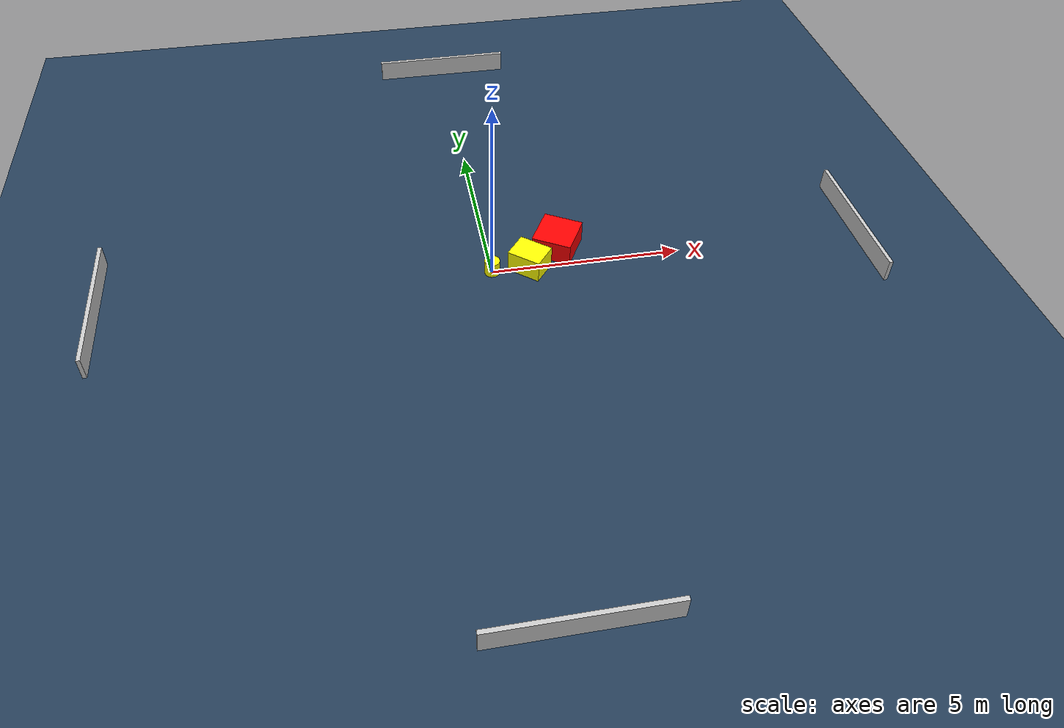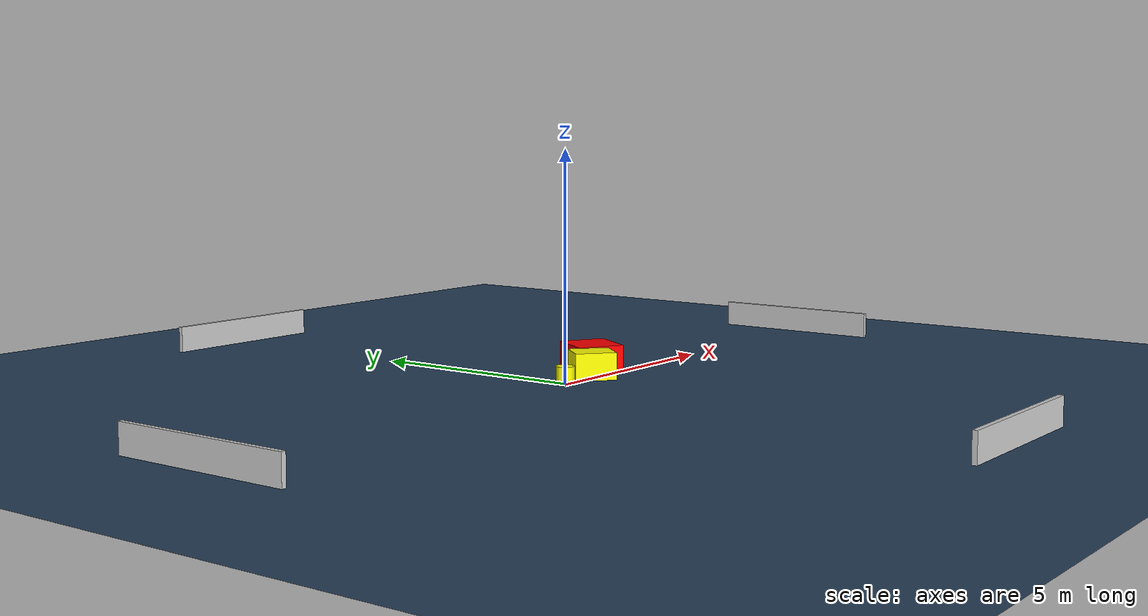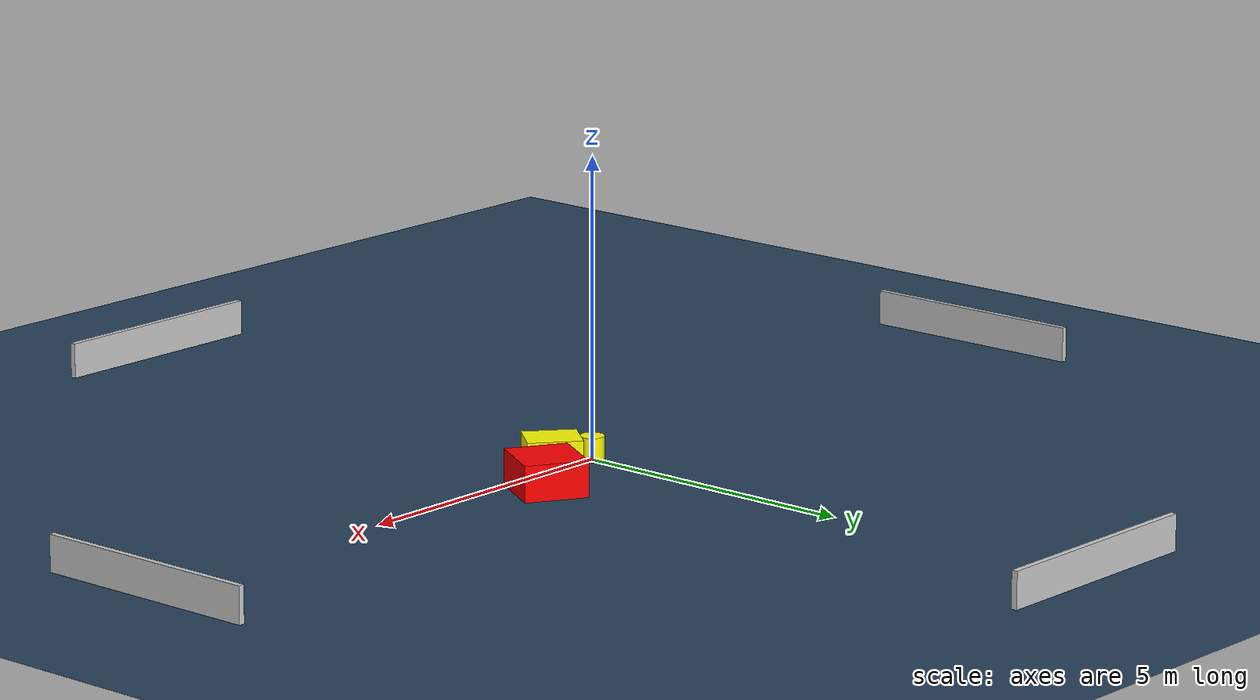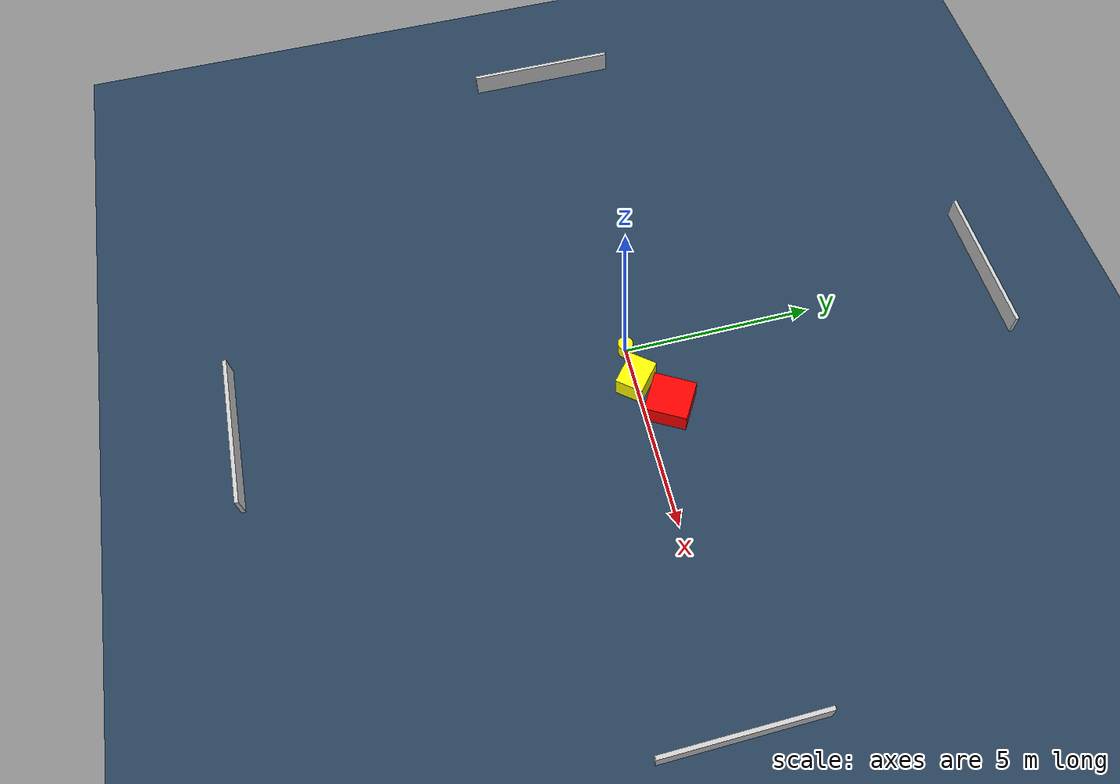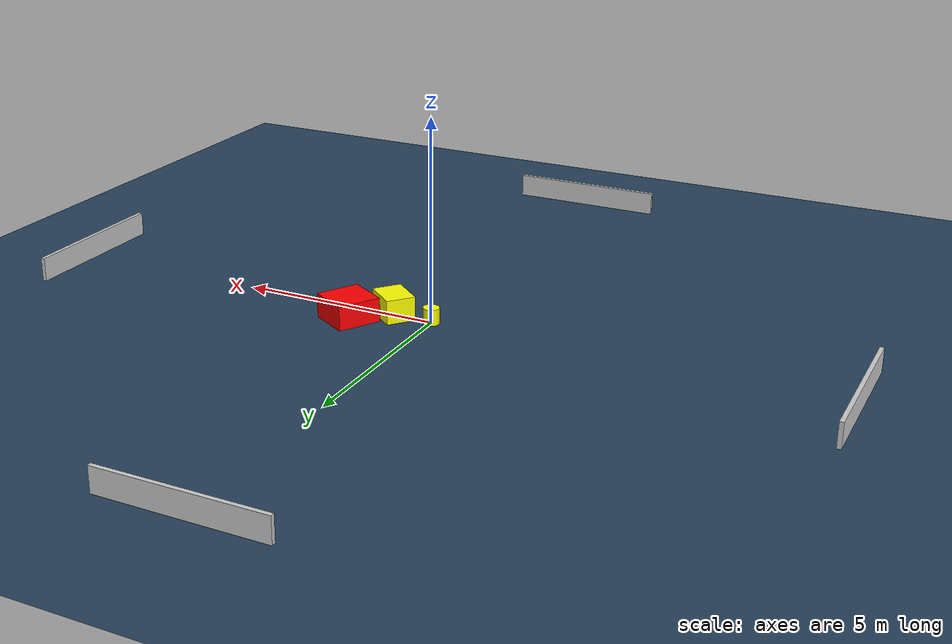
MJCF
<?xml version="1.0" ?>
<mujoco model="generated_environment">
  <option timestep="0.01" integrator="RK4" cone="elliptic"/>
  <default>
    <geom density="1"/>
  </default>
  <asset>
    <texture builtin="gradient" height="3072" name="skybox" rgb1="0.3 0.5 0.7" rgb2="0 0 0" type="skybox" width="512"/>
    <texture builtin="checker" height="300" name="groundplane" rgb1="0.2 0.3 0.4" rgb2="0.1 0.2 0.3" type="2d" width="300"/>
    <material name="groundplane" reflectance="0.2" texrepeat="5 5" texture="groundplane"/>
  </asset>
  <worldbody>
    <light dir="0 0 -1" directional="true" pos="0 0 1.5"/>
    <geom condim="3" friction="0.5 0.005 0.001" material="groundplane" name="floor" pos="0 0 0" size="0 0 0.05" type="plane"/>
    <body name="walls">
      <geom name="wall_1" condim="4" pos="-10.0 0.0 0.3" rgba="0.800000011920929 0.800000011920929 0.800000011920929 1.0" size="0.05 2.0 0.3" type="box"/>
      <geom name="wall_2" condim="4" pos="10.0 0.0 0.3" rgba="0.800000011920929 0.800000011920929 0.800000011920929 1.0" size="0.05 2.0 0.3" type="box"/>
      <geom name="wall_3" condim="4" pos="0.0 -10.0 0.3" rgba="0.800000011920929 0.800000011920929 0.800000011920929 1.0" size="2.0 0.05 0.3" type="box"/>
      <geom name="wall_4" condim="4" pos="0.0 10.0 0.3" rgba="0.800000011920929 0.800000011920929 0.800000011920929 1.0" size="2.0 0.05 0.3" type="box"/>
    </body>
    <body name="robot">
      <joint name="joint_x" type="slide" pos="0 0 0" axis="1 0 0"/>
      <joint name="joint_y" type="slide" pos="0 0 0" axis="0 1 0"/>
      <geom name="robot" type="cylinder" pos="0.0 0.0 0.2" size="0.2 0.2 0.0" mass="5.0" friction="1.0 0.005 0.0001" condim="4" rgba="1.0 1.0 0.0 1.0"/>
    </body>
    <body name="obstacle_1_movable">
      <geom name="obstacle_1_movable" condim="4" pos="0.994546345722216 0.017611027710311727 0.3" euler="0 0 230.3921029800677" friction="0.0 0.005 0.001" rgba="1.0 1.0 0.0 1.0" size="0.3635937169763382 0.45337855071469235 0.3" type="box" mass="0.1"/>
      <joint type="free"/>
    </body>
    <body name="obstacle_2_static">
      <geom name="obstacle_2_static" condim="4" pos="1.866859838075997 0.670811581144368 0.3" euler="0 0 239.64588566031355" friction="0.0 0.005 0.001" rgba="1.0 0.0 0.0 1.0" size="0.5481704486940849 0.5276205970149073 0.3" type="box"/>
    </body>
  </worldbody>
  <actuator>
    <motor name="actuator_x" joint="joint_x" gear="1" ctrlrange="-1 1"/>
    <motor name="actuator_y" joint="joint_y" gear="1" ctrlrange="-1 1"/>
  </actuator>
</mujoco>
